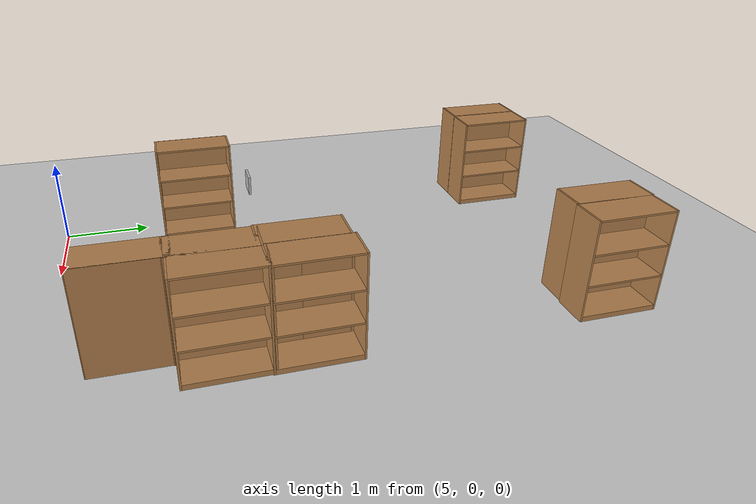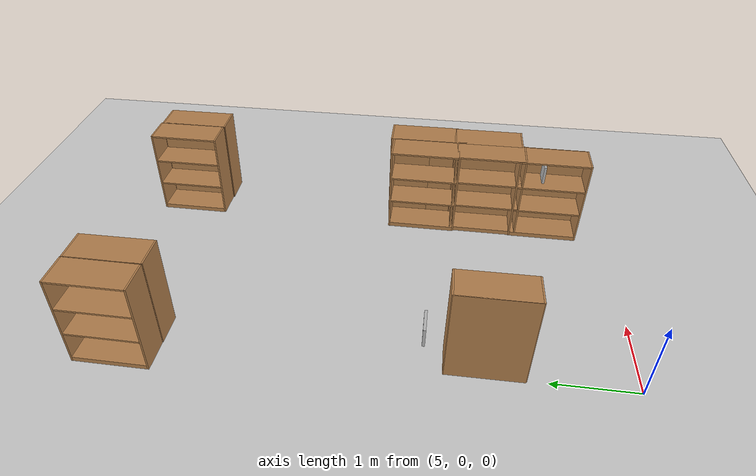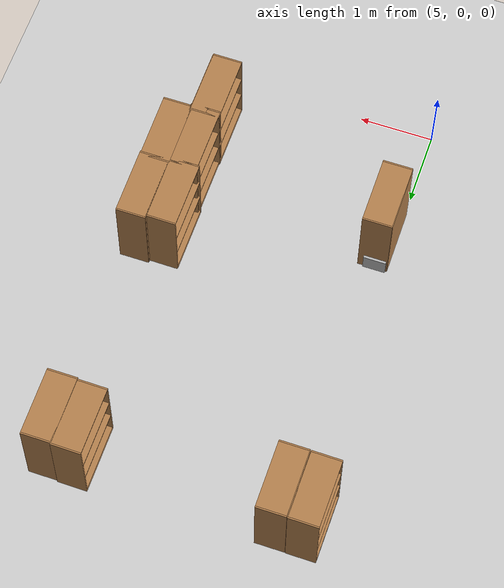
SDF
<sdf version="1.7">
 <world name="library_world">
  <model name="ground_plane">
   <static>1</static>
   <link name="link">
    <collision name="collision">
     <geometry><plane><normal>0 0 1</normal><size>100 100</size></plane></geometry>
     <surface>
      <contact><collide_bitmask>65535</collide_bitmask></contact>
      <friction><ode><mu>100</mu><mu2>50</mu2></ode></friction>
     </surface>
    </collision>
    <visual name="visual">
     <cast_shadows>0</cast_shadows>
     <geometry><plane><normal>0 0 1</normal><size>100 100</size></plane></geometry>
     <material>
      <script><uri>file://media/materials/scripts/gazebo.material</uri><name>Gazebo/Grey</name></script>
     </material>
    </visual>
   </link>
  </model>
  <model name="bookshelf_0_clone_8_clone_12">
   <static>1</static>
   <link name="link">
    <inertial><mass>1</mass></inertial>
    <collision name="back">
     <pose>0 0.005 0.6 0 -0 0</pose>
     <geometry><box><size>0.9 0.01 1.2</size></box></geometry>
    </collision>
    <visual name="visual1">
     <pose>0 0.005 0.6 0 -0 0</pose>
     <geometry><box><size>0.9 0.01 1.2</size></box></geometry>
     <material>
      <script><uri>file://media/materials/scripts/gazebo.material</uri><name>Gazebo/Wood</name></script>
     </material>
    </visual>
    <collision name="left_side">
     <pose>0.45 -0.195 0.6 0 -0 0</pose>
     <geometry><box><size>0.02 0.4 1.2</size></box></geometry>
    </collision>
    <visual name="visual2">
     <pose>0.45 -0.195 0.6 0 -0 0</pose>
     <geometry><box><size>0.02 0.4 1.2</size></box></geometry>
     <material>
      <script><uri>file://media/materials/scripts/gazebo.material</uri><name>Gazebo/Wood</name></script>
     </material>
    </visual>
    <collision name="right_side">
     <pose>-0.45 -0.195 0.6 0 -0 0</pose>
     <geometry><box><size>0.02 0.4 1.2</size></box></geometry>
    </collision>
    <visual name="visual3">
     <pose>-0.45 -0.195 0.6 0 -0 0</pose>
     <geometry><box><size>0.02 0.4 1.2</size></box></geometry>
     <material>
      <script><uri>file://media/materials/scripts/gazebo.material</uri><name>Gazebo/Wood</name></script>
     </material>
    </visual>
    <collision name="bottom">
     <pose>0 -0.195 0.03 0 -0 0</pose>
     <geometry><box><size>0.88 0.4 0.06</size></box></geometry>
    </collision>
    <visual name="visual4">
     <pose>0 -0.195 0.03 0 -0 0</pose>
     <geometry><box><size>0.88 0.4 0.06</size></box></geometry>
     <material>
      <script><uri>file://media/materials/scripts/gazebo.material</uri><name>Gazebo/Wood</name></script>
     </material>
    </visual>
    <collision name="top">
     <pose>0 -0.195 1.19 0 -0 0</pose>
     <geometry><box><size>0.88 0.4 0.02</size></box></geometry>
    </collision>
    <visual name="visual5">
     <pose>0 -0.195 1.19 0 -0 0</pose>
     <geometry><box><size>0.88 0.4 0.02</size></box></geometry>
     <material>
      <script><uri>file://media/materials/scripts/gazebo.material</uri><name>Gazebo/Wood</name></script>
     </material>
    </visual>
    <collision name="low_shelf">
     <pose>0 -0.195 0.43 0 -0 0</pose>
     <geometry><box><size>0.88 0.4 0.02</size></box></geometry>
    </collision>
    <visual name="visual6">
     <pose>0 -0.195 0.43 0 -0 0</pose>
     <geometry><box><size>0.88 0.4 0.02</size></box></geometry>
     <material>
      <script><uri>file://media/materials/scripts/gazebo.material</uri><name>Gazebo/Wood</name></script>
     </material>
    </visual>
    <collision name="high_shelf">
     <pose>0 -0.195 0.8 0 -0 0</pose>
     <geometry><box><size>0.88 0.4 0.02</size></box></geometry>
    </collision>
    <visual name="visual7">
     <pose>0 -0.195 0.8 0 -0 0</pose>
     <geometry><box><size>0.88 0.4 0.02</size></box></geometry>
     <material>
      <script><uri>file://media/materials/scripts/gazebo.material</uri><name>Gazebo/Wood</name></script>
     </material>
    </visual>
   </link>
   <pose>7.99458 5.88295 0 0 0 -1.57537</pose>
  </model>
  <model name="bookshelf_0_clone_8_clone_17">
   <static>1</static>
   <link name="link">
    <inertial><mass>1</mass></inertial>
    <collision name="back">
     <pose>0 0.005 0.6 0 -0 0</pose>
     <geometry><box><size>0.9 0.01 1.2</size></box></geometry>
    </collision>
    <visual name="visual1">
     <pose>0 0.005 0.6 0 -0 0</pose>
     <geometry><box><size>0.9 0.01 1.2</size></box></geometry>
     <material>
      <script><uri>file://media/materials/scripts/gazebo.material</uri><name>Gazebo/Wood</name></script>
     </material>
    </visual>
    <collision name="left_side">
     <pose>0.45 -0.195 0.6 0 -0 0</pose>
     <geometry><box><size>0.02 0.4 1.2</size></box></geometry>
    </collision>
    <visual name="visual2">
     <pose>0.45 -0.195 0.6 0 -0 0</pose>
     <geometry><box><size>0.02 0.4 1.2</size></box></geometry>
     <material>
      <script><uri>file://media/materials/scripts/gazebo.material</uri><name>Gazebo/Wood</name></script>
     </material>
    </visual>
    <collision name="right_side">
     <pose>-0.45 -0.195 0.6 0 -0 0</pose>
     <geometry><box><size>0.02 0.4 1.2</size></box></geometry>
    </collision>
    <visual name="visual3">
     <pose>-0.45 -0.195 0.6 0 -0 0</pose>
     <geometry><box><size>0.02 0.4 1.2</size></box></geometry>
     <material>
      <script><uri>file://media/materials/scripts/gazebo.material</uri><name>Gazebo/Wood</name></script>
     </material>
    </visual>
    <collision name="bottom">
     <pose>0 -0.195 0.03 0 -0 0</pose>
     <geometry><box><size>0.88 0.4 0.06</size></box></geometry>
    </collision>
    <visual name="visual4">
     <pose>0 -0.195 0.03 0 -0 0</pose>
     <geometry><box><size>0.88 0.4 0.06</size></box></geometry>
     <material>
      <script><uri>file://media/materials/scripts/gazebo.material</uri><name>Gazebo/Wood</name></script>
     </material>
    </visual>
    <collision name="top">
     <pose>0 -0.195 1.19 0 -0 0</pose>
     <geometry><box><size>0.88 0.4 0.02</size></box></geometry>
    </collision>
    <visual name="visual5">
     <pose>0 -0.195 1.19 0 -0 0</pose>
     <geometry><box><size>0.88 0.4 0.02</size></box></geometry>
     <material>
      <script><uri>file://media/materials/scripts/gazebo.material</uri><name>Gazebo/Wood</name></script>
     </material>
    </visual>
    <collision name="low_shelf">
     <pose>0 -0.195 0.43 0 -0 0</pose>
     <geometry><box><size>0.88 0.4 0.02</size></box></geometry>
    </collision>
    <visual name="visual6">
     <pose>0 -0.195 0.43 0 -0 0</pose>
     <geometry><box><size>0.88 0.4 0.02</size></box></geometry>
     <material>
      <script><uri>file://media/materials/scripts/gazebo.material</uri><name>Gazebo/Wood</name></script>
     </material>
    </visual>
    <collision name="high_shelf">
     <pose>0 -0.195 0.8 0 -0 0</pose>
     <geometry><box><size>0.88 0.4 0.02</size></box></geometry>
    </collision>
    <visual name="visual7">
     <pose>0 -0.195 0.8 0 -0 0</pose>
     <geometry><box><size>0.88 0.4 0.02</size></box></geometry>
     <material>
      <script><uri>file://media/materials/scripts/gazebo.material</uri><name>Gazebo/Wood</name></script>
     </material>
    </visual>
   </link>
   <pose>4.99636 5.84577 0 0 0 -1.57537</pose>
  </model>
  <model name="bookshelf_0_clone_2_clone_12">
   <static>1</static>
   <link name="link">
    <inertial><mass>1</mass></inertial>
    <collision name="back">
     <pose>0 0.005 0.6 0 -0 0</pose>
     <geometry><box><size>0.9 0.01 1.2</size></box></geometry>
    </collision>
    <visual name="visual1">
     <pose>0 0.005 0.6 0 -0 0</pose>
     <geometry><box><size>0.9 0.01 1.2</size></box></geometry>
     <material>
      <script><uri>file://media/materials/scripts/gazebo.material</uri><name>Gazebo/Wood</name></script>
     </material>
    </visual>
    <collision name="left_side">
     <pose>0.45 -0.195 0.6 0 -0 0</pose>
     <geometry><box><size>0.02 0.4 1.2</size></box></geometry>
    </collision>
    <visual name="visual2">
     <pose>0.45 -0.195 0.6 0 -0 0</pose>
     <geometry><box><size>0.02 0.4 1.2</size></box></geometry>
     <material>
      <script><uri>file://media/materials/scripts/gazebo.material</uri><name>Gazebo/Wood</name></script>
     </material>
    </visual>
    <collision name="right_side">
     <pose>-0.45 -0.195 0.6 0 -0 0</pose>
     <geometry><box><size>0.02 0.4 1.2</size></box></geometry>
    </collision>
    <visual name="visual3">
     <pose>-0.45 -0.195 0.6 0 -0 0</pose>
     <geometry><box><size>0.02 0.4 1.2</size></box></geometry>
     <material>
      <script><uri>file://media/materials/scripts/gazebo.material</uri><name>Gazebo/Wood</name></script>
     </material>
    </visual>
    <collision name="bottom">
     <pose>0 -0.195 0.03 0 -0 0</pose>
     <geometry><box><size>0.88 0.4 0.06</size></box></geometry>
    </collision>
    <visual name="visual4">
     <pose>0 -0.195 0.03 0 -0 0</pose>
     <geometry><box><size>0.88 0.4 0.06</size></box></geometry>
     <material>
      <script><uri>file://media/materials/scripts/gazebo.material</uri><name>Gazebo/Wood</name></script>
     </material>
    </visual>
    <collision name="top">
     <pose>0 -0.195 1.19 0 -0 0</pose>
     <geometry><box><size>0.88 0.4 0.02</size></box></geometry>
    </collision>
    <visual name="visual5">
     <pose>0 -0.195 1.19 0 -0 0</pose>
     <geometry><box><size>0.88 0.4 0.02</size></box></geometry>
     <material>
      <script><uri>file://media/materials/scripts/gazebo.material</uri><name>Gazebo/Wood</name></script>
     </material>
    </visual>
    <collision name="low_shelf">
     <pose>0 -0.195 0.43 0 -0 0</pose>
     <geometry><box><size>0.88 0.4 0.02</size></box></geometry>
    </collision>
    <visual name="visual6">
     <pose>0 -0.195 0.43 0 -0 0</pose>
     <geometry><box><size>0.88 0.4 0.02</size></box></geometry>
     <material>
      <script><uri>file://media/materials/scripts/gazebo.material</uri><name>Gazebo/Wood</name></script>
     </material>
    </visual>
    <collision name="high_shelf">
     <pose>0 -0.195 0.8 0 -0 0</pose>
     <geometry><box><size>0.88 0.4 0.02</size></box></geometry>
    </collision>
    <visual name="visual7">
     <pose>0 -0.195 0.8 0 -0 0</pose>
     <geometry><box><size>0.88 0.4 0.02</size></box></geometry>
     <material>
      <script><uri>file://media/materials/scripts/gazebo.material</uri><name>Gazebo/Wood</name></script>
     </material>
    </visual>
   </link>
   <pose>5.0161 5.84184 0 0 -0 1.57381</pose>
  </model>
  <model name="bookshelf_0_clone_2_clone_17">
   <static>1</static>
   <link name="link">
    <inertial><mass>1</mass></inertial>
    <collision name="back">
     <pose>0 0.005 0.6 0 -0 0</pose>
     <geometry><box><size>0.9 0.01 1.2</size></box></geometry>
    </collision>
    <visual name="visual1">
     <pose>0 0.005 0.6 0 -0 0</pose>
     <geometry><box><size>0.9 0.01 1.2</size></box></geometry>
     <material>
      <script><uri>file://media/materials/scripts/gazebo.material</uri><name>Gazebo/Wood</name></script>
     </material>
    </visual>
    <collision name="left_side">
     <pose>0.45 -0.195 0.6 0 -0 0</pose>
     <geometry><box><size>0.02 0.4 1.2</size></box></geometry>
    </collision>
    <visual name="visual2">
     <pose>0.45 -0.195 0.6 0 -0 0</pose>
     <geometry><box><size>0.02 0.4 1.2</size></box></geometry>
     <material>
      <script><uri>file://media/materials/scripts/gazebo.material</uri><name>Gazebo/Wood</name></script>
     </material>
    </visual>
    <collision name="right_side">
     <pose>-0.45 -0.195 0.6 0 -0 0</pose>
     <geometry><box><size>0.02 0.4 1.2</size></box></geometry>
    </collision>
    <visual name="visual3">
     <pose>-0.45 -0.195 0.6 0 -0 0</pose>
     <geometry><box><size>0.02 0.4 1.2</size></box></geometry>
     <material>
      <script><uri>file://media/materials/scripts/gazebo.material</uri><name>Gazebo/Wood</name></script>
     </material>
    </visual>
    <collision name="bottom">
     <pose>0 -0.195 0.03 0 -0 0</pose>
     <geometry><box><size>0.88 0.4 0.06</size></box></geometry>
    </collision>
    <visual name="visual4">
     <pose>0 -0.195 0.03 0 -0 0</pose>
     <geometry><box><size>0.88 0.4 0.06</size></box></geometry>
     <material>
      <script><uri>file://media/materials/scripts/gazebo.material</uri><name>Gazebo/Wood</name></script>
     </material>
    </visual>
    <collision name="top">
     <pose>0 -0.195 1.19 0 -0 0</pose>
     <geometry><box><size>0.88 0.4 0.02</size></box></geometry>
    </collision>
    <visual name="visual5">
     <pose>0 -0.195 1.19 0 -0 0</pose>
     <geometry><box><size>0.88 0.4 0.02</size></box></geometry>
     <material>
      <script><uri>file://media/materials/scripts/gazebo.material</uri><name>Gazebo/Wood</name></script>
     </material>
    </visual>
    <collision name="low_shelf">
     <pose>0 -0.195 0.43 0 -0 0</pose>
     <geometry><box><size>0.88 0.4 0.02</size></box></geometry>
    </collision>
    <visual name="visual6">
     <pose>0 -0.195 0.43 0 -0 0</pose>
     <geometry><box><size>0.88 0.4 0.02</size></box></geometry>
     <material>
      <script><uri>file://media/materials/scripts/gazebo.material</uri><name>Gazebo/Wood</name></script>
     </material>
    </visual>
    <collision name="high_shelf">
     <pose>0 -0.195 0.8 0 -0 0</pose>
     <geometry><box><size>0.88 0.4 0.02</size></box></geometry>
    </collision>
    <visual name="visual7">
     <pose>0 -0.195 0.8 0 -0 0</pose>
     <geometry><box><size>0.88 0.4 0.02</size></box></geometry>
     <material>
      <script><uri>file://media/materials/scripts/gazebo.material</uri><name>Gazebo/Wood</name></script>
     </material>
    </visual>
   </link>
   <pose>8.0008 5.86669 0 0 -0 1.57381</pose>
  </model>
  <model name="bookshelf_0_clone_2_clone_30">
   <static>1</static>
   <link name="link">
    <inertial><mass>1</mass></inertial>
    <collision name="back">
     <pose>0 0.005 0.6 0 -0 0</pose>
     <geometry><box><size>0.9 0.01 1.2</size></box></geometry>
    </collision>
    <visual name="visual1">
     <pose>0 0.005 0.6 0 -0 0</pose>
     <geometry><box><size>0.9 0.01 1.2</size></box></geometry>
     <material>
      <script><uri>file://media/materials/scripts/gazebo.material</uri><name>Gazebo/Wood</name></script>
     </material>
    </visual>
    <collision name="left_side">
     <pose>0.45 -0.195 0.6 0 -0 0</pose>
     <geometry><box><size>0.02 0.4 1.2</size></box></geometry>
    </collision>
    <visual name="visual2">
     <pose>0.45 -0.195 0.6 0 -0 0</pose>
     <geometry><box><size>0.02 0.4 1.2</size></box></geometry>
     <material>
      <script><uri>file://media/materials/scripts/gazebo.material</uri><name>Gazebo/Wood</name></script>
     </material>
    </visual>
    <collision name="right_side">
     <pose>-0.45 -0.195 0.6 0 -0 0</pose>
     <geometry><box><size>0.02 0.4 1.2</size></box></geometry>
    </collision>
    <visual name="visual3">
     <pose>-0.45 -0.195 0.6 0 -0 0</pose>
     <geometry><box><size>0.02 0.4 1.2</size></box></geometry>
     <material>
      <script><uri>file://media/materials/scripts/gazebo.material</uri><name>Gazebo/Wood</name></script>
     </material>
    </visual>
    <collision name="bottom">
     <pose>0 -0.195 0.03 0 -0 0</pose>
     <geometry><box><size>0.88 0.4 0.06</size></box></geometry>
    </collision>
    <visual name="visual4">
     <pose>0 -0.195 0.03 0 -0 0</pose>
     <geometry><box><size>0.88 0.4 0.06</size></box></geometry>
     <material>
      <script><uri>file://media/materials/scripts/gazebo.material</uri><name>Gazebo/Wood</name></script>
     </material>
    </visual>
    <collision name="top">
     <pose>0 -0.195 1.19 0 -0 0</pose>
     <geometry><box><size>0.88 0.4 0.02</size></box></geometry>
    </collision>
    <visual name="visual5">
     <pose>0 -0.195 1.19 0 -0 0</pose>
     <geometry><box><size>0.88 0.4 0.02</size></box></geometry>
     <material>
      <script><uri>file://media/materials/scripts/gazebo.material</uri><name>Gazebo/Wood</name></script>
     </material>
    </visual>
    <collision name="low_shelf">
     <pose>0 -0.195 0.43 0 -0 0</pose>
     <geometry><box><size>0.88 0.4 0.02</size></box></geometry>
    </collision>
    <visual name="visual6">
     <pose>0 -0.195 0.43 0 -0 0</pose>
     <geometry><box><size>0.88 0.4 0.02</size></box></geometry>
     <material>
      <script><uri>file://media/materials/scripts/gazebo.material</uri><name>Gazebo/Wood</name></script>
     </material>
    </visual>
    <collision name="high_shelf">
     <pose>0 -0.195 0.8 0 -0 0</pose>
     <geometry><box><size>0.88 0.4 0.02</size></box></geometry>
    </collision>
    <visual name="visual7">
     <pose>0 -0.195 0.8 0 -0 0</pose>
     <geometry><box><size>0.88 0.4 0.02</size></box></geometry>
     <material>
      <script><uri>file://media/materials/scripts/gazebo.material</uri><name>Gazebo/Wood</name></script>
     </material>
    </visual>
   </link>
   <pose>4.98765 1.69254 0 0 -0 1.57381</pose>
  </model>
  <model name="bookshelf_0_clone_2_clone_34">
   <static>1</static>
   <link name="link">
    <inertial><mass>1</mass></inertial>
    <collision name="back">
     <pose>0 0.005 0.6 0 -0 0</pose>
     <geometry><box><size>0.9 0.01 1.2</size></box></geometry>
    </collision>
    <visual name="visual1">
     <pose>0 0.005 0.6 0 -0 0</pose>
     <geometry><box><size>0.9 0.01 1.2</size></box></geometry>
     <material>
      <script><uri>file://media/materials/scripts/gazebo.material</uri><name>Gazebo/Wood</name></script>
     </material>
    </visual>
    <collision name="left_side">
     <pose>0.45 -0.195 0.6 0 -0 0</pose>
     <geometry><box><size>0.02 0.4 1.2</size></box></geometry>
    </collision>
    <visual name="visual2">
     <pose>0.45 -0.195 0.6 0 -0 0</pose>
     <geometry><box><size>0.02 0.4 1.2</size></box></geometry>
     <material>
      <script><uri>file://media/materials/scripts/gazebo.material</uri><name>Gazebo/Wood</name></script>
     </material>
    </visual>
    <collision name="right_side">
     <pose>-0.45 -0.195 0.6 0 -0 0</pose>
     <geometry><box><size>0.02 0.4 1.2</size></box></geometry>
    </collision>
    <visual name="visual3">
     <pose>-0.45 -0.195 0.6 0 -0 0</pose>
     <geometry><box><size>0.02 0.4 1.2</size></box></geometry>
     <material>
      <script><uri>file://media/materials/scripts/gazebo.material</uri><name>Gazebo/Wood</name></script>
     </material>
    </visual>
    <collision name="bottom">
     <pose>0 -0.195 0.03 0 -0 0</pose>
     <geometry><box><size>0.88 0.4 0.06</size></box></geometry>
    </collision>
    <visual name="visual4">
     <pose>0 -0.195 0.03 0 -0 0</pose>
     <geometry><box><size>0.88 0.4 0.06</size></box></geometry>
     <material>
      <script><uri>file://media/materials/scripts/gazebo.material</uri><name>Gazebo/Wood</name></script>
     </material>
    </visual>
    <collision name="top">
     <pose>0 -0.195 1.19 0 -0 0</pose>
     <geometry><box><size>0.88 0.4 0.02</size></box></geometry>
    </collision>
    <visual name="visual5">
     <pose>0 -0.195 1.19 0 -0 0</pose>
     <geometry><box><size>0.88 0.4 0.02</size></box></geometry>
     <material>
      <script><uri>file://media/materials/scripts/gazebo.material</uri><name>Gazebo/Wood</name></script>
     </material>
    </visual>
    <collision name="low_shelf">
     <pose>0 -0.195 0.43 0 -0 0</pose>
     <geometry><box><size>0.88 0.4 0.02</size></box></geometry>
    </collision>
    <visual name="visual6">
     <pose>0 -0.195 0.43 0 -0 0</pose>
     <geometry><box><size>0.88 0.4 0.02</size></box></geometry>
     <material>
      <script><uri>file://media/materials/scripts/gazebo.material</uri><name>Gazebo/Wood</name></script>
     </material>
    </visual>
    <collision name="high_shelf">
     <pose>0 -0.195 0.8 0 -0 0</pose>
     <geometry><box><size>0.88 0.4 0.02</size></box></geometry>
    </collision>
    <visual name="visual7">
     <pose>0 -0.195 0.8 0 -0 0</pose>
     <geometry><box><size>0.88 0.4 0.02</size></box></geometry>
     <material>
      <script><uri>file://media/materials/scripts/gazebo.material</uri><name>Gazebo/Wood</name></script>
     </material>
    </visual>
   </link>
   <pose>8.00174 2.58507 0 0 -0 1.57381</pose>
  </model>
  <model name="bookshelf_0_clone_2_clone_35">
   <static>1</static>
   <link name="link">
    <inertial><mass>1</mass></inertial>
    <collision name="back">
     <pose>0 0.005 0.6 0 -0 0</pose>
     <geometry><box><size>0.9 0.01 1.2</size></box></geometry>
    </collision>
    <visual name="visual1">
     <pose>0 0.005 0.6 0 -0 0</pose>
     <geometry><box><size>0.9 0.01 1.2</size></box></geometry>
     <material>
      <script><uri>file://media/materials/scripts/gazebo.material</uri><name>Gazebo/Wood</name></script>
     </material>
    </visual>
    <collision name="left_side">
     <pose>0.45 -0.195 0.6 0 -0 0</pose>
     <geometry><box><size>0.02 0.4 1.2</size></box></geometry>
    </collision>
    <visual name="visual2">
     <pose>0.45 -0.195 0.6 0 -0 0</pose>
     <geometry><box><size>0.02 0.4 1.2</size></box></geometry>
     <material>
      <script><uri>file://media/materials/scripts/gazebo.material</uri><name>Gazebo/Wood</name></script>
     </material>
    </visual>
    <collision name="right_side">
     <pose>-0.45 -0.195 0.6 0 -0 0</pose>
     <geometry><box><size>0.02 0.4 1.2</size></box></geometry>
    </collision>
    <visual name="visual3">
     <pose>-0.45 -0.195 0.6 0 -0 0</pose>
     <geometry><box><size>0.02 0.4 1.2</size></box></geometry>
     <material>
      <script><uri>file://media/materials/scripts/gazebo.material</uri><name>Gazebo/Wood</name></script>
     </material>
    </visual>
    <collision name="bottom">
     <pose>0 -0.195 0.03 0 -0 0</pose>
     <geometry><box><size>0.88 0.4 0.06</size></box></geometry>
    </collision>
    <visual name="visual4">
     <pose>0 -0.195 0.03 0 -0 0</pose>
     <geometry><box><size>0.88 0.4 0.06</size></box></geometry>
     <material>
      <script><uri>file://media/materials/scripts/gazebo.material</uri><name>Gazebo/Wood</name></script>
     </material>
    </visual>
    <collision name="top">
     <pose>0 -0.195 1.19 0 -0 0</pose>
     <geometry><box><size>0.88 0.4 0.02</size></box></geometry>
    </collision>
    <visual name="visual5">
     <pose>0 -0.195 1.19 0 -0 0</pose>
     <geometry><box><size>0.88 0.4 0.02</size></box></geometry>
     <material>
      <script><uri>file://media/materials/scripts/gazebo.material</uri><name>Gazebo/Wood</name></script>
     </material>
    </visual>
    <collision name="low_shelf">
     <pose>0 -0.195 0.43 0 -0 0</pose>
     <geometry><box><size>0.88 0.4 0.02</size></box></geometry>
    </collision>
    <visual name="visual6">
     <pose>0 -0.195 0.43 0 -0 0</pose>
     <geometry><box><size>0.88 0.4 0.02</size></box></geometry>
     <material>
      <script><uri>file://media/materials/scripts/gazebo.material</uri><name>Gazebo/Wood</name></script>
     </material>
    </visual>
    <collision name="high_shelf">
     <pose>0 -0.195 0.8 0 -0 0</pose>
     <geometry><box><size>0.88 0.4 0.02</size></box></geometry>
    </collision>
    <visual name="visual7">
     <pose>0 -0.195 0.8 0 -0 0</pose>
     <geometry><box><size>0.88 0.4 0.02</size></box></geometry>
     <material>
      <script><uri>file://media/materials/scripts/gazebo.material</uri><name>Gazebo/Wood</name></script>
     </material>
    </visual>
   </link>
   <pose>7.99347 1.71311 0 0 -0 1.57381</pose>
  </model>
  <model name="bookshelf_0_clone_8_clone_17_clone_0">
   <static>1</static>
   <link name="link">
    <inertial><mass>1</mass></inertial>
    <collision name="back">
     <pose>0 0.005 0.6 0 -0 0</pose>
     <geometry><box><size>0.9 0.01 1.2</size></box></geometry>
    </collision>
    <visual name="visual1">
     <pose>0 0.005 0.6 0 -0 0</pose>
     <geometry><box><size>0.9 0.01 1.2</size></box></geometry>
     <material>
      <script><uri>file://media/materials/scripts/gazebo.material</uri><name>Gazebo/Wood</name></script>
     </material>
    </visual>
    <collision name="left_side">
     <pose>0.45 -0.195 0.6 0 -0 0</pose>
     <geometry><box><size>0.02 0.4 1.2</size></box></geometry>
    </collision>
    <visual name="visual2">
     <pose>0.45 -0.195 0.6 0 -0 0</pose>
     <geometry><box><size>0.02 0.4 1.2</size></box></geometry>
     <material>
      <script><uri>file://media/materials/scripts/gazebo.material</uri><name>Gazebo/Wood</name></script>
     </material>
    </visual>
    <collision name="right_side">
     <pose>-0.45 -0.195 0.6 0 -0 0</pose>
     <geometry><box><size>0.02 0.4 1.2</size></box></geometry>
    </collision>
    <visual name="visual3">
     <pose>-0.45 -0.195 0.6 0 -0 0</pose>
     <geometry><box><size>0.02 0.4 1.2</size></box></geometry>
     <material>
      <script><uri>file://media/materials/scripts/gazebo.material</uri><name>Gazebo/Wood</name></script>
     </material>
    </visual>
    <collision name="bottom">
     <pose>0 -0.195 0.03 0 -0 0</pose>
     <geometry><box><size>0.88 0.4 0.06</size></box></geometry>
    </collision>
    <visual name="visual4">
     <pose>0 -0.195 0.03 0 -0 0</pose>
     <geometry><box><size>0.88 0.4 0.06</size></box></geometry>
     <material>
      <script><uri>file://media/materials/scripts/gazebo.material</uri><name>Gazebo/Wood</name></script>
     </material>
    </visual>
    <collision name="top">
     <pose>0 -0.195 1.19 0 -0 0</pose>
     <geometry><box><size>0.88 0.4 0.02</size></box></geometry>
    </collision>
    <visual name="visual5">
     <pose>0 -0.195 1.19 0 -0 0</pose>
     <geometry><box><size>0.88 0.4 0.02</size></box></geometry>
     <material>
      <script><uri>file://media/materials/scripts/gazebo.material</uri><name>Gazebo/Wood</name></script>
     </material>
    </visual>
    <collision name="low_shelf">
     <pose>0 -0.195 0.43 0 -0 0</pose>
     <geometry><box><size>0.88 0.4 0.02</size></box></geometry>
    </collision>
    <visual name="visual6">
     <pose>0 -0.195 0.43 0 -0 0</pose>
     <geometry><box><size>0.88 0.4 0.02</size></box></geometry>
     <material>
      <script><uri>file://media/materials/scripts/gazebo.material</uri><name>Gazebo/Wood</name></script>
     </material>
    </visual>
    <collision name="high_shelf">
     <pose>0 -0.195 0.8 0 -0 0</pose>
     <geometry><box><size>0.88 0.4 0.02</size></box></geometry>
    </collision>
    <visual name="visual7">
     <pose>0 -0.195 0.8 0 -0 0</pose>
     <geometry><box><size>0.88 0.4 0.02</size></box></geometry>
     <material>
      <script><uri>file://media/materials/scripts/gazebo.material</uri><name>Gazebo/Wood</name></script>
     </material>
    </visual>
   </link>
   <pose>7.99222 2.54747 0 0 0 -1.57537</pose>
  </model>
  <model name="bookshelf_0_clone_8_clone_17_clone_1">
   <static>1</static>
   <link name="link">
    <inertial><mass>1</mass></inertial>
    <collision name="back">
     <pose>0 0.005 0.6 0 -0 0</pose>
     <geometry><box><size>0.9 0.01 1.2</size></box></geometry>
    </collision>
    <visual name="visual1">
     <pose>0 0.005 0.6 0 -0 0</pose>
     <geometry><box><size>0.9 0.01 1.2</size></box></geometry>
     <material>
      <script><uri>file://media/materials/scripts/gazebo.material</uri><name>Gazebo/Wood</name></script>
     </material>
    </visual>
    <collision name="left_side">
     <pose>0.45 -0.195 0.6 0 -0 0</pose>
     <geometry><box><size>0.02 0.4 1.2</size></box></geometry>
    </collision>
    <visual name="visual2">
     <pose>0.45 -0.195 0.6 0 -0 0</pose>
     <geometry><box><size>0.02 0.4 1.2</size></box></geometry>
     <material>
      <script><uri>file://media/materials/scripts/gazebo.material</uri><name>Gazebo/Wood</name></script>
     </material>
    </visual>
    <collision name="right_side">
     <pose>-0.45 -0.195 0.6 0 -0 0</pose>
     <geometry><box><size>0.02 0.4 1.2</size></box></geometry>
    </collision>
    <visual name="visual3">
     <pose>-0.45 -0.195 0.6 0 -0 0</pose>
     <geometry><box><size>0.02 0.4 1.2</size></box></geometry>
     <material>
      <script><uri>file://media/materials/scripts/gazebo.material</uri><name>Gazebo/Wood</name></script>
     </material>
    </visual>
    <collision name="bottom">
     <pose>0 -0.195 0.03 0 -0 0</pose>
     <geometry><box><size>0.88 0.4 0.06</size></box></geometry>
    </collision>
    <visual name="visual4">
     <pose>0 -0.195 0.03 0 -0 0</pose>
     <geometry><box><size>0.88 0.4 0.06</size></box></geometry>
     <material>
      <script><uri>file://media/materials/scripts/gazebo.material</uri><name>Gazebo/Wood</name></script>
     </material>
    </visual>
    <collision name="top">
     <pose>0 -0.195 1.19 0 -0 0</pose>
     <geometry><box><size>0.88 0.4 0.02</size></box></geometry>
    </collision>
    <visual name="visual5">
     <pose>0 -0.195 1.19 0 -0 0</pose>
     <geometry><box><size>0.88 0.4 0.02</size></box></geometry>
     <material>
      <script><uri>file://media/materials/scripts/gazebo.material</uri><name>Gazebo/Wood</name></script>
     </material>
    </visual>
    <collision name="low_shelf">
     <pose>0 -0.195 0.43 0 -0 0</pose>
     <geometry><box><size>0.88 0.4 0.02</size></box></geometry>
    </collision>
    <visual name="visual6">
     <pose>0 -0.195 0.43 0 -0 0</pose>
     <geometry><box><size>0.88 0.4 0.02</size></box></geometry>
     <material>
      <script><uri>file://media/materials/scripts/gazebo.material</uri><name>Gazebo/Wood</name></script>
     </material>
    </visual>
    <collision name="high_shelf">
     <pose>0 -0.195 0.8 0 -0 0</pose>
     <geometry><box><size>0.88 0.4 0.02</size></box></geometry>
    </collision>
    <visual name="visual7">
     <pose>0 -0.195 0.8 0 -0 0</pose>
     <geometry><box><size>0.88 0.4 0.02</size></box></geometry>
     <material>
      <script><uri>file://media/materials/scripts/gazebo.material</uri><name>Gazebo/Wood</name></script>
     </material>
    </visual>
   </link>
   <pose>8.01015 1.68576 0 0 0 -1.57537</pose>
  </model>
  <model name="bookshelf_0_clone_8_clone_17_clone_2">
   <static>1</static>
   <link name="link">
    <inertial><mass>1</mass></inertial>
    <collision name="back">
     <pose>0 0.005 0.6 0 -0 0</pose>
     <geometry><box><size>0.9 0.01 1.2</size></box></geometry>
    </collision>
    <visual name="visual1">
     <pose>0 0.005 0.6 0 -0 0</pose>
     <geometry><box><size>0.9 0.01 1.2</size></box></geometry>
     <material>
      <script><uri>file://media/materials/scripts/gazebo.material</uri><name>Gazebo/Wood</name></script>
     </material>
    </visual>
    <collision name="left_side">
     <pose>0.45 -0.195 0.6 0 -0 0</pose>
     <geometry><box><size>0.02 0.4 1.2</size></box></geometry>
    </collision>
    <visual name="visual2">
     <pose>0.45 -0.195 0.6 0 -0 0</pose>
     <geometry><box><size>0.02 0.4 1.2</size></box></geometry>
     <material>
      <script><uri>file://media/materials/scripts/gazebo.material</uri><name>Gazebo/Wood</name></script>
     </material>
    </visual>
    <collision name="right_side">
     <pose>-0.45 -0.195 0.6 0 -0 0</pose>
     <geometry><box><size>0.02 0.4 1.2</size></box></geometry>
    </collision>
    <visual name="visual3">
     <pose>-0.45 -0.195 0.6 0 -0 0</pose>
     <geometry><box><size>0.02 0.4 1.2</size></box></geometry>
     <material>
      <script><uri>file://media/materials/scripts/gazebo.material</uri><name>Gazebo/Wood</name></script>
     </material>
    </visual>
    <collision name="bottom">
     <pose>0 -0.195 0.03 0 -0 0</pose>
     <geometry><box><size>0.88 0.4 0.06</size></box></geometry>
    </collision>
    <visual name="visual4">
     <pose>0 -0.195 0.03 0 -0 0</pose>
     <geometry><box><size>0.88 0.4 0.06</size></box></geometry>
     <material>
      <script><uri>file://media/materials/scripts/gazebo.material</uri><name>Gazebo/Wood</name></script>
     </material>
    </visual>
    <collision name="top">
     <pose>0 -0.195 1.19 0 -0 0</pose>
     <geometry><box><size>0.88 0.4 0.02</size></box></geometry>
    </collision>
    <visual name="visual5">
     <pose>0 -0.195 1.19 0 -0 0</pose>
     <geometry><box><size>0.88 0.4 0.02</size></box></geometry>
     <material>
      <script><uri>file://media/materials/scripts/gazebo.material</uri><name>Gazebo/Wood</name></script>
     </material>
    </visual>
    <collision name="low_shelf">
     <pose>0 -0.195 0.43 0 -0 0</pose>
     <geometry><box><size>0.88 0.4 0.02</size></box></geometry>
    </collision>
    <visual name="visual6">
     <pose>0 -0.195 0.43 0 -0 0</pose>
     <geometry><box><size>0.88 0.4 0.02</size></box></geometry>
     <material>
      <script><uri>file://media/materials/scripts/gazebo.material</uri><name>Gazebo/Wood</name></script>
     </material>
    </visual>
    <collision name="high_shelf">
     <pose>0 -0.195 0.8 0 -0 0</pose>
     <geometry><box><size>0.88 0.4 0.02</size></box></geometry>
    </collision>
    <visual name="visual7">
     <pose>0 -0.195 0.8 0 -0 0</pose>
     <geometry><box><size>0.88 0.4 0.02</size></box></geometry>
     <material>
      <script><uri>file://media/materials/scripts/gazebo.material</uri><name>Gazebo/Wood</name></script>
     </material>
    </visual>
   </link>
   <pose>7.99669 0.85952 0 0 0 -1.57537</pose>
  </model>
  <model name="book_2_clone_0">
   <static>1</static>
   <link name="link">
    <visual name="visual"><geometry><box><size>0.3 0.032318 0.244099</size></box></geometry></visual>
   </link>
   <pose>5.107 2.38723 0.562007 0 -0 0</pose>
  </model>
  <model name="book_2_clone_clone_6">
   <static>1</static>
   <link name="link">
    <visual name="visual"><geometry><box><size>0.221094 0.032318 0.244099</size></box></geometry></visual>
   </link>
   <pose>7.85089 0.95917 0.934382 0 -0 0</pose>
  </model>
 </world>
</sdf>
